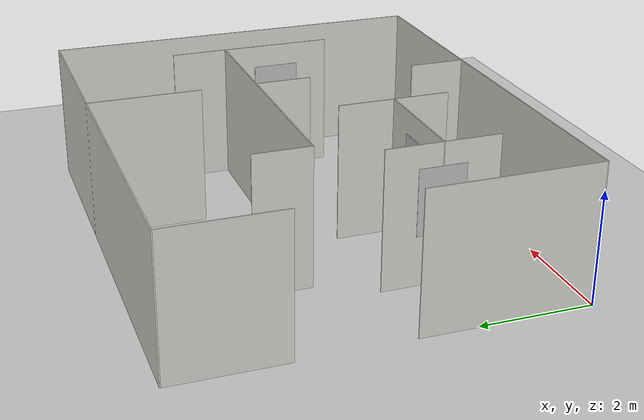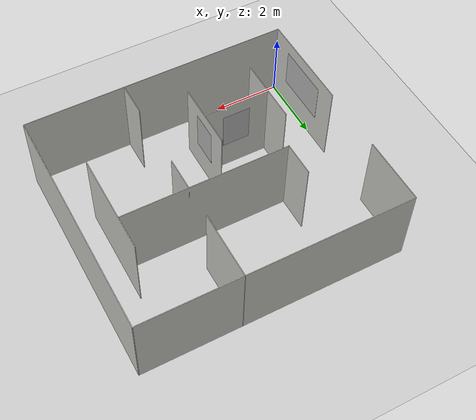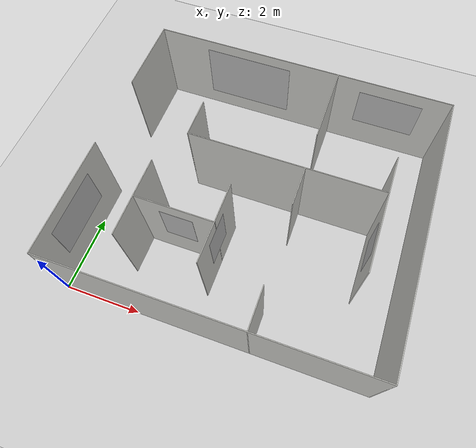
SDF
<sdf version="1.7">
 <world name="plano1">
  <light name="sun" type="directional">
   <pose>0 0 10 0 -0 0</pose>
   <diffuse>0.8 0.8 0.8 1</diffuse>
   <specular>0.2 0.2 0.2 1</specular>
   <attenuation>
    <range>1000</range>
    <constant>0.9</constant>
    <linear>0.01</linear>
    <quadratic>0.001</quadratic>
   </attenuation>
   <direction>-0.5 0.1 -0.9</direction>
   <spot><inner_angle>0</inner_angle><outer_angle>0</outer_angle><falloff>0</falloff></spot>
  </light>
  <model name="ground_plane">
   <static>1</static>
   <link name="link">
    <collision name="collision">
     <geometry><plane><normal>0 0 1</normal><size>100 100</size></plane></geometry>
     <surface>
      <contact><collide_bitmask>65535</collide_bitmask></contact>
      <friction><ode><mu>100</mu><mu2>50</mu2></ode></friction>
     </surface>
    </collision>
    <visual name="visual">
     <cast_shadows>0</cast_shadows>
     <geometry><plane><normal>0 0 1</normal><size>100 100</size></plane></geometry>
     <material>
      <script><uri>file://media/materials/scripts/gazebo.material</uri><name>Gazebo/Grey</name></script>
     </material>
    </visual>
   </link>
  </model>
  <gravity>0 0 -9.8</gravity>
  <magnetic_field>6e-06 2.3e-05 -4.2e-05</magnetic_field>
  <atmosphere type="adiabatic"/>
  <physics type="ode">
   <max_step_size>0.001</max_step_size>
   <real_time_factor>1</real_time_factor>
   <real_time_update_rate>1000</real_time_update_rate>
  </physics>
  <scene><ambient>0.4 0.4 0.4 1</ambient><background>0.7 0.7 0.7 1</background><shadows>1</shadows></scene>
  <spherical_coordinates>
   <surface_model>EARTH_WGS84</surface_model>
   <latitude_deg>0</latitude_deg>
   <longitude_deg>0</longitude_deg>
   <elevation>0</elevation>
   <heading_deg>0</heading_deg>
  </spherical_coordinates>
  <model name="plano1.world">
   <link name="Wall_0">
    <collision name="Wall_0_Collision">
     <geometry><box><size>8.02 0.02 2.5</size></box></geometry>
     <pose>0 0 1.25 0 -0 0</pose>
    </collision>
    <visual name="Wall_0_Visual">
     <pose>0 0 1.25 0 -0 0</pose>
     <geometry><box><size>8.02 0.02 2.5</size></box></geometry>
     <material>
      <script><uri>file://media/materials/scripts/gazebo.material</uri><name>Gazebo/CeilingTiled</name></script>
      <ambient>1 1 1 1</ambient>
     </material>
     <meta><layer>0</layer></meta>
    </visual>
    <pose>4 0 0 0 -0 0</pose>
   </link>
   <link name="Wall_1">
    <collision name="Wall_1_Collision">
     <geometry><box><size>7.02 0.02 2.5</size></box></geometry>
     <pose>0 0 1.25 0 -0 0</pose>
    </collision>
    <visual name="Wall_1_Visual">
     <pose>0 0 1.25 0 -0 0</pose>
     <geometry><box><size>7.02 0.02 2.5</size></box></geometry>
     <material>
      <script><uri>file://media/materials/scripts/gazebo.material</uri><name>Gazebo/CeilingTiled</name></script>
      <ambient>1 1 1 1</ambient>
     </material>
     <meta><layer>0</layer></meta>
    </visual>
    <pose>8 3.5 0 0 -0 1.5708</pose>
   </link>
   <link name="Wall_11">
    <collision name="Wall_11_Collision">
     <geometry><box><size>1.02 0.02 2.5</size></box></geometry>
     <pose>0 0 1.25 0 -0 0</pose>
    </collision>
    <visual name="Wall_11_Visual">
     <pose>0 0 1.25 0 -0 0</pose>
     <geometry><box><size>1.02 0.02 2.5</size></box></geometry>
     <material>
      <script><uri>file://media/materials/scripts/gazebo.material</uri><name>Gazebo/CeilingTiled</name></script>
      <ambient>1 1 1 1</ambient>
     </material>
     <meta><layer>0</layer></meta>
    </visual>
    <pose>2 4.5 0 0 0 -1.5708</pose>
   </link>
   <link name="Wall_12">
    <collision name="Wall_12_Collision">
     <geometry><box><size>5.02 0.02 2.5</size></box></geometry>
     <pose>0 0 1.25 0 -0 0</pose>
    </collision>
    <visual name="Wall_12_Visual">
     <pose>0 0 1.25 0 -0 0</pose>
     <geometry><box><size>5.02 0.02 2.5</size></box></geometry>
     <material>
      <script><uri>file://media/materials/scripts/gazebo.material</uri><name>Gazebo/CeilingTiled</name></script>
      <ambient>1 1 1 1</ambient>
     </material>
     <meta><layer>0</layer></meta>
    </visual>
    <pose>4.5 4 0 0 -0 0</pose>
   </link>
   <link name="Wall_15">
    <collision name="Wall_15_Collision">
     <geometry><box><size>1.02 0.02 2.5</size></box></geometry>
     <pose>0 0 1.25 0 -0 0</pose>
    </collision>
    <visual name="Wall_15_Visual">
     <pose>0 0 1.25 0 -0 0</pose>
     <geometry><box><size>1.02 0.02 2.5</size></box></geometry>
     <material>
      <script><uri>file://media/materials/scripts/gazebo.material</uri><name>Gazebo/CeilingTiled</name></script>
      <ambient>1 1 1 1</ambient>
     </material>
     <meta><layer>0</layer></meta>
    </visual>
    <pose>5 3.5 0 0 0 -1.5708</pose>
   </link>
   <link name="Wall_17">
    <collision name="Wall_17_Collision">
     <geometry><box><size>3.02 0.02 2.5</size></box></geometry>
     <pose>0 0 1.25 0 -0 0</pose>
    </collision>
    <visual name="Wall_17_Visual">
     <pose>0 0 1.25 0 -0 0</pose>
     <geometry><box><size>3.02 0.02 2.5</size></box></geometry>
     <material>
      <script><uri>file://media/materials/scripts/gazebo.material</uri><name>Gazebo/CeilingTiled</name></script>
      <ambient>1 1 1 1</ambient>
     </material>
     <meta><layer>0</layer></meta>
    </visual>
    <pose>7 3.5 0 0 0 -1.5708</pose>
   </link>
   <link name="Wall_19">
    <collision name="Wall_19_Collision">
     <geometry><box><size>2.02 0.02 2.5</size></box></geometry>
     <pose>0 0 1.25 0 -0 0</pose>
    </collision>
    <visual name="Wall_19_Visual">
     <pose>0 0 1.25 0 -0 0</pose>
     <geometry><box><size>2.02 0.02 2.5</size></box></geometry>
     <material>
      <script><uri>file://media/materials/scripts/gazebo.material</uri><name>Gazebo/CeilingTiled</name></script>
      <ambient>1 1 1 1</ambient>
     </material>
     <meta><layer>0</layer></meta>
    </visual>
    <pose>1.5 2 0 0 -0 1.5708</pose>
   </link>
   <link name="Wall_2">
    <collision name="Wall_2_Collision">
     <geometry><box><size>8.02 0.02 2.5</size></box></geometry>
     <pose>0 0 1.25 0 -0 0</pose>
    </collision>
    <visual name="Wall_2_Visual">
     <pose>0 0 1.25 0 -0 0</pose>
     <geometry><box><size>8.02 0.02 2.5</size></box></geometry>
     <material>
      <script><uri>file://media/materials/scripts/gazebo.material</uri><name>Gazebo/CeilingTiled</name></script>
      <ambient>1 1 1 1</ambient>
     </material>
     <meta><layer>0</layer></meta>
    </visual>
    <pose>4 7 0 0 -0 3.14159</pose>
   </link>
   <link name="Wall_21">
    <collision name="Wall_21_Collision">
     <geometry><box><size>2.02 0.02 2.5</size></box></geometry>
     <pose>0 0 1.25 0 -0 0</pose>
    </collision>
    <visual name="Wall_21_Visual">
     <pose>0 0 1.25 0 -0 0</pose>
     <geometry><box><size>2.02 0.02 2.5</size></box></geometry>
     <material>
      <script><uri>file://media/materials/scripts/gazebo.material</uri><name>Gazebo/CeilingTiled</name></script>
      <ambient>1 1 1 1</ambient>
     </material>
     <meta><layer>0</layer></meta>
    </visual>
    <pose>2.5 2 0 0 -0 0</pose>
   </link>
   <link name="Wall_23">
    <collision name="Wall_23_Collision">
     <geometry><box><size>2.02 0.02 2.5</size></box></geometry>
     <pose>0 0 1.25 0 -0 0</pose>
    </collision>
    <visual name="Wall_23_Visual">
     <pose>0 0 1.25 0 -0 0</pose>
     <geometry><box><size>2.02 0.02 2.5</size></box></geometry>
     <material>
      <script><uri>file://media/materials/scripts/gazebo.material</uri><name>Gazebo/CeilingTiled</name></script>
      <ambient>1 1 1 1</ambient>
     </material>
     <meta><layer>0</layer></meta>
    </visual>
    <pose>3.5 2 0 0 0 -1.5708</pose>
   </link>
   <link name="Wall_3">
    <collision name="Wall_3_Collision">
     <geometry><box><size>2.02 0.02 2.5</size></box></geometry>
     <pose>0 0 1.25 0 -0 0</pose>
    </collision>
    <visual name="Wall_3_Visual">
     <pose>0 0 1.25 0 -0 0</pose>
     <geometry><box><size>2.02 0.02 2.5</size></box></geometry>
     <material>
      <script><uri>file://media/materials/scripts/gazebo.material</uri><name>Gazebo/CeilingTiled</name></script>
      <ambient>1 1 1 1</ambient>
     </material>
     <meta><layer>0</layer></meta>
    </visual>
    <pose>0 6 0 0 0 -1.5708</pose>
   </link>
   <link name="Wall_5">
    <collision name="Wall_5_Collision">
     <geometry><box><size>3.02 0.02 2.5</size></box></geometry>
     <pose>0 0 1.25 0 -0 0</pose>
    </collision>
    <visual name="Wall_5_Visual">
     <pose>0 0 1.25 0 -0 0</pose>
     <geometry><box><size>3.02 0.02 2.5</size></box></geometry>
     <material>
      <script><uri>file://media/materials/scripts/gazebo.material</uri><name>Gazebo/CeilingTiled</name></script>
      <ambient>1 1 1 1</ambient>
     </material>
     <meta><layer>0</layer></meta>
    </visual>
    <pose>0 1.5 0 0 -0 1.5708</pose>
   </link>
   <link name="Wall_7">
    <collision name="Wall_7_Collision">
     <geometry><box><size>2.02 0.02 2.5</size></box></geometry>
     <pose>0 0 1.25 0 -0 0</pose>
    </collision>
    <visual name="Wall_7_Visual">
     <pose>0 0 1.25 0 -0 0</pose>
     <geometry><box><size>2.02 0.02 2.5</size></box></geometry>
     <material>
      <script><uri>file://media/materials/scripts/gazebo.material</uri><name>Gazebo/CeilingTiled</name></script>
      <ambient>1 1 1 1</ambient>
     </material>
     <meta><layer>0</layer></meta>
    </visual>
    <pose>5 6 0 0 0 -1.5708</pose>
   </link>
   <link name="Wall_9">
    <collision name="Wall_9_Collision">
     <geometry><box><size>1.02 0.02 2.5</size></box></geometry>
     <pose>0 0 1.25 0 -0 0</pose>
    </collision>
    <visual name="Wall_9_Visual">
     <pose>0 0 1.25 0 -0 0</pose>
     <geometry><box><size>1.02 0.02 2.5</size></box></geometry>
     <material>
      <script><uri>file://media/materials/scripts/gazebo.material</uri><name>Gazebo/CeilingTiled</name></script>
      <ambient>1 1 1 1</ambient>
     </material>
     <meta><layer>0</layer></meta>
    </visual>
    <pose>5 0.5 0 0 -0 1.5708</pose>
   </link>
   <static>1</static>
  </model>
  <include><uri>model://C0</uri><static>true</static><pose>2.5 6.99 1.341 0 0 0</pose></include>
  <include><uri>model://C1</uri><static>true</static><pose>6.5 6.99 1.4945 0 0 0</pose></include>
  <include>
   <uri>model://C10</uri>
   <static>true</static>
   <pose>6.99 3 1.4945 0 0 1.5707963267948966192313216916398</pose>
  </include>
  <include>
   <uri>model://C11</uri>
   <static>true</static>
   <pose>0.01 1.5 1.4945 0 0 1.5707963267948966192313216916398</pose>
  </include>
  <include>
   <uri>model://C12</uri>
   <static>true</static>
   <pose>1.49 2 1.4945 0 0 1.5707963267948966192313216916398</pose>
  </include>
  <include><uri>model://C13</uri><static>true</static><pose>2.5 2.01 1.4945 0 0 0</pose></include>
  <include>
   <uri>model://C14</uri>
   <static>true</static>
   <pose>3.51 2 1.4945 0 0 1.5707963267948966192313216916398</pose>
  </include>
  <include><uri>model://C15</uri><static>true</static><pose>2.5 1.99 1.4945 0 0 0</pose></include>
 </world>
</sdf>

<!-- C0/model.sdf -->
<sdf version="1.5">
  <model name="C0">
    <pose>0 0 1 0 0 0</pose>
    <static>true</static>
    <link name="link">
      <inertial>
        <mass>1.0</mass>
        <inertia> <!-- inertias are tricky to compute -->
          <!-- http://gazebosim.org/tutorials?tut=inertia&cat=build_robot -->
          <ixx>0.083</ixx>       <!-- for a box: ixx = 0.083 * mass * (y*y + z*z) -->
          <ixy>0.0</ixy>         <!-- for a box: ixy = 0 -->
          <ixz>0.0</ixz>         <!-- for a box: ixz = 0 -->
          <iyy>0.083</iyy>       <!-- for a box: iyy = 0.083 * mass * (x*x + z*z) -->
          <iyz>0.0</iyz>         <!-- for a box: iyz = 0 -->
          <izz>0.083</izz>       <!-- for a box: izz = 0.083 * mass * (x*x + y*y) -->
        </inertia>
      </inertial>
      <collision name="collision">
        <geometry>
          <box>
            <size>2.378 0.01 1.682</size>
          </box>
        </geometry>
      </collision>
      <visual name="visual">
        <geometry>
          <box>
            <size>2.378 0.01 1.682</size>
          </box>
        </geometry>
        <material>
        <script>
        <uri>model://C0/materials/scripts/</uri>
        <uri>model://C0/materials/textures/</uri>
        <name>C0Texture</name>
      </script>
      </material>
      </visual>
    </link>
  </model>
</sdf>

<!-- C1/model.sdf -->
<sdf version="1.5">
  <model name="C1">
    <pose>0 0 1 0 0 0</pose>
    <static>true</static>
    <link name="link">
      <inertial>
        <mass>1.0</mass>
        <inertia> <!-- inertias are tricky to compute -->
          <!-- http://gazebosim.org/tutorials?tut=inertia&cat=build_robot -->
          <ixx>0.083</ixx>       <!-- for a box: ixx = 0.083 * mass * (y*y + z*z) -->
          <ixy>0.0</ixy>         <!-- for a box: ixy = 0 -->
          <ixz>0.0</ixz>         <!-- for a box: ixz = 0 -->
          <iyy>0.083</iyy>       <!-- for a box: iyy = 0.083 * mass * (x*x + z*z) -->
          <iyz>0.0</iyz>         <!-- for a box: iyz = 0 -->
          <izz>0.083</izz>       <!-- for a box: izz = 0.083 * mass * (x*x + y*y) -->
        </inertia>
      </inertial>
      <collision name="collision">
        <geometry>
          <box>
            <size>1.682 0.01 1.189</size>
          </box>
        </geometry>
      </collision>
      <visual name="visual">
        <geometry>
          <box>
            <size>1.682 0.01 1.189</size>
          </box>
        </geometry>
         <material>
      <script>
        <uri>model://C1/materials/scripts/</uri>
        <uri>model://C1/materials/textures/</uri>
        <name>C1Texture</name>
      </script>
    </material>
      </visual>

    </link>
  </model>
</sdf>

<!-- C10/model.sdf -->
<sdf version="1.5">
  <model name="C10">
    <pose>0 0 1 0 0 0</pose>
    <static>true</static>
    <link name="link">
      <inertial>
        <mass>1.0</mass>
        <inertia> <!-- inertias are tricky to compute -->
          <!-- http://gazebosim.org/tutorials?tut=inertia&cat=build_robot -->
          <ixx>0.083</ixx>       <!-- for a box: ixx = 0.083 * mass * (y*y + z*z) -->
          <ixy>0.0</ixy>         <!-- for a box: ixy = 0 -->
          <ixz>0.0</ixz>         <!-- for a box: ixz = 0 -->
          <iyy>0.083</iyy>       <!-- for a box: iyy = 0.083 * mass * (x*x + z*z) -->
          <iyz>0.0</iyz>         <!-- for a box: iyz = 0 -->
          <izz>0.083</izz>       <!-- for a box: izz = 0.083 * mass * (x*x + y*y) -->
        </inertia>
      </inertial>
      <collision name="collision">
        <geometry>
          <box>
            <size>0.841 0.01 1.189</size>
          </box>
        </geometry>
      </collision>
      <visual name="visual">
        <geometry>
          <box>
            <size>0.841 0.01 1.189</size>
          </box>
        </geometry>
        <material>
      <script>
        <uri>model://C10/materials/scripts/</uri>
        <uri>model://C10/materials/textures/</uri>
        <name>C10Texture</name>
      </script>
    </material>
      </visual>
    </link>
  </model>
</sdf>

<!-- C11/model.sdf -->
<sdf version="1.5">
  <model name="C11">
    <pose>0 0 1 0 0 0</pose>
    <static>true</static>
    <link name="link">
      <inertial>
        <mass>1.0</mass>
        <inertia> <!-- inertias are tricky to compute -->
          <!-- http://gazebosim.org/tutorials?tut=inertia&cat=build_robot -->
          <ixx>0.083</ixx>       <!-- for a box: ixx = 0.083 * mass * (y*y + z*z) -->
          <ixy>0.0</ixy>         <!-- for a box: ixy = 0 -->
          <ixz>0.0</ixz>         <!-- for a box: ixz = 0 -->
          <iyy>0.083</iyy>       <!-- for a box: iyy = 0.083 * mass * (x*x + z*z) -->
          <iyz>0.0</iyz>         <!-- for a box: iyz = 0 -->
          <izz>0.083</izz>       <!-- for a box: izz = 0.083 * mass * (x*x + y*y) -->
        </inertia>
      </inertial>
      <collision name="collision">
        <geometry>
          <box>
            <size>1.682 0.01 1.189</size>
          </box>
        </geometry>
      </collision>
      <visual name="visual">
        <geometry>
          <box>
            <size>1.682 0.01 1.189</size>
          </box>
        </geometry>
         <material>
      <script>
        <uri>model://C11/materials/scripts/</uri>
        <uri>model://C11/materials/textures/</uri>
        <name>C11Texture</name>
      </script>
    </material>
      </visual>
    </link>
  </model>
</sdf>

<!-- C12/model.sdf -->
<sdf version="1.5">
  <model name="C12">
    <pose>0 0 1 0 0 0</pose>
    <static>true</static>
    <link name="link">
      <inertial>
        <mass>1.0</mass>
        <inertia> <!-- inertias are tricky to compute -->
          <!-- http://gazebosim.org/tutorials?tut=inertia&cat=build_robot -->
          <ixx>0.083</ixx>       <!-- for a box: ixx = 0.083 * mass * (y*y + z*z) -->
          <ixy>0.0</ixy>         <!-- for a box: ixy = 0 -->
          <ixz>0.0</ixz>         <!-- for a box: ixz = 0 -->
          <iyy>0.083</iyy>       <!-- for a box: iyy = 0.083 * mass * (x*x + z*z) -->
          <iyz>0.0</iyz>         <!-- for a box: iyz = 0 -->
          <izz>0.083</izz>       <!-- for a box: izz = 0.083 * mass * (x*x + y*y) -->
        </inertia>
      </inertial>
      <collision name="collision">
        <geometry>
          <box>
            <size>0.841 0.01 1.189</size>
          </box>
        </geometry>
      </collision>
      <visual name="visual">
        <geometry>
          <box>
            <size>0.841 0.01 1.189</size>
          </box>
        </geometry>
        <material>
      <script>
        <uri>model://C12/materials/scripts/</uri>
        <uri>model://C12/materials/textures/</uri>
        <name>C12Texture</name>
      </script>
    </material>
      </visual>
    </link>
  </model>
</sdf>

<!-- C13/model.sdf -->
<sdf version="1.5">
  <model name="C13">
    <pose>0 0 1 0 0 0</pose>
    <static>true</static>
    <link name="link">
      <inertial>
        <mass>1.0</mass>
        <inertia> <!-- inertias are tricky to compute -->
          <!-- http://gazebosim.org/tutorials?tut=inertia&cat=build_robot -->
          <ixx>0.083</ixx>       <!-- for a box: ixx = 0.083 * mass * (y*y + z*z) -->
          <ixy>0.0</ixy>         <!-- for a box: ixy = 0 -->
          <ixz>0.0</ixz>         <!-- for a box: ixz = 0 -->
          <iyy>0.083</iyy>       <!-- for a box: iyy = 0.083 * mass * (x*x + z*z) -->
          <iyz>0.0</iyz>         <!-- for a box: iyz = 0 -->
          <izz>0.083</izz>       <!-- for a box: izz = 0.083 * mass * (x*x + y*y) -->
        </inertia>
      </inertial>
      <collision name="collision">
        <geometry>
          <box>
            <size>0.841 0.01 1.189</size>
          </box>
        </geometry>
      </collision>
      <visual name="visual">
        <geometry>
          <box>
            <size>0.841 0.01 1.189</size>
          </box>
        </geometry>
        <material>
      <script>
        <uri>model://C13/materials/scripts/</uri>
        <uri>model://C13/materials/textures/</uri>
        <name>C13Texture</name>
      </script>
    </material>
      </visual>
    </link>
  </model>
</sdf>

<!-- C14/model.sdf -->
<sdf version="1.5">
  <model name="C14">
    <pose>0 0 1 0 0 0</pose>
    <static>true</static>
    <link name="link">
      <inertial>
        <mass>1.0</mass>
        <inertia> <!-- inertias are tricky to compute -->
          <!-- http://gazebosim.org/tutorials?tut=inertia&cat=build_robot -->
          <ixx>0.083</ixx>       <!-- for a box: ixx = 0.083 * mass * (y*y + z*z) -->
          <ixy>0.0</ixy>         <!-- for a box: ixy = 0 -->
          <ixz>0.0</ixz>         <!-- for a box: ixz = 0 -->
          <iyy>0.083</iyy>       <!-- for a box: iyy = 0.083 * mass * (x*x + z*z) -->
          <iyz>0.0</iyz>         <!-- for a box: iyz = 0 -->
          <izz>0.083</izz>       <!-- for a box: izz = 0.083 * mass * (x*x + y*y) -->
        </inertia>
      </inertial>
      <collision name="collision">
        <geometry>
          <box>
            <size>0.841 0.01 1.189</size>
          </box>
        </geometry>
      </collision>
      <visual name="visual">
        <geometry>
          <box>
            <size>0.841 0.01 1.189</size>
          </box>
        </geometry>
        <material>
      <script>
        <uri>model://C14/materials/scripts/</uri>
        <uri>model://C14/materials/textures/</uri>
        <name>C14Texture</name>
      </script>
    </material>
      </visual>
    </link>
  </model>
</sdf>

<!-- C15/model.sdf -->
<sdf version="1.5">
  <model name="C15">
    <pose>0 0 1 0 0 0</pose>
    <static>true</static>
    <link name="link">
      <inertial>
        <mass>1.0</mass>
        <inertia> <!-- inertias are tricky to compute -->
          <!-- http://gazebosim.org/tutorials?tut=inertia&cat=build_robot -->
          <ixx>0.083</ixx>       <!-- for a box: ixx = 0.083 * mass * (y*y + z*z) -->
          <ixy>0.0</ixy>         <!-- for a box: ixy = 0 -->
          <ixz>0.0</ixz>         <!-- for a box: ixz = 0 -->
          <iyy>0.083</iyy>       <!-- for a box: iyy = 0.083 * mass * (x*x + z*z) -->
          <iyz>0.0</iyz>         <!-- for a box: iyz = 0 -->
          <izz>0.083</izz>       <!-- for a box: izz = 0.083 * mass * (x*x + y*y) -->
        </inertia>
      </inertial>
      <collision name="collision">
        <geometry>
          <box>
            <size>0.841 0.01 1.189</size>
          </box>
        </geometry>
      </collision>
      <visual name="visual">
        <geometry>
          <box>
            <size>0.841 0.01 1.189</size>
          </box>
        </geometry>
         <material>
      <script>
        <uri>model://C15/materials/scripts/</uri>
        <uri>model://C15/materials/textures/</uri>
        <name>C15Texture</name>
      </script>
    </material>
      </visual>
    </link>
  </model>
</sdf>
